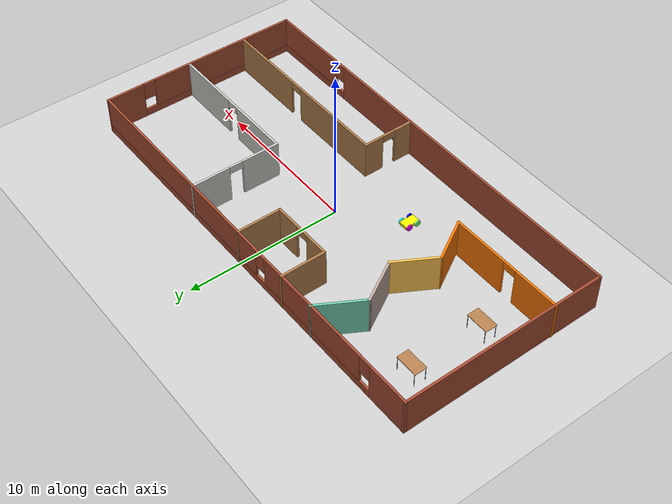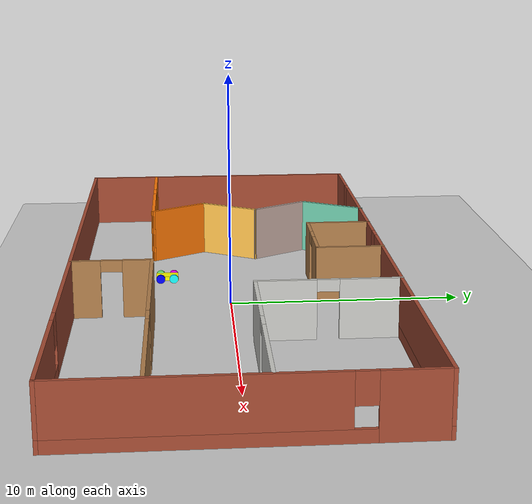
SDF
<sdf version="1.6">
 <world name="default">
  <model name="ground_plane">
   <static>1</static>
   <link name="link">
    <collision name="collision">
     <geometry><plane><normal>0 0 1</normal><size>100 100</size></plane></geometry>
     <surface>
      <contact><collide_bitmask>65535</collide_bitmask></contact>
      <friction><ode><mu>100</mu><mu2>50</mu2></ode></friction>
     </surface>
    </collision>
    <visual name="visual">
     <cast_shadows>0</cast_shadows>
     <geometry><plane><normal>0 0 1</normal><size>100 100</size></plane></geometry>
     <material>
      <script><uri>file://media/materials/scripts/gazebo.material</uri><name>Gazebo/Grey</name></script>
     </material>
    </visual>
   </link>
  </model>
  <model name="office">
   <pose>-0.0877 -0.031287 0 0 -0 0</pose>
   <link name="Wall_0">
    <collision name="Wall_0_Collision">
     <geometry><box><size>13.5 0.15 2.5</size></box></geometry>
     <pose>0 0 1.25 0 -0 0</pose>
    </collision>
    <visual name="Wall_0_Visual">
     <pose>0 0 1.25 0 -0 0</pose>
     <geometry><box><size>13.5 0.15 2.5</size></box></geometry>
     <material>
      <script><uri>file://media/materials/scripts/gazebo.material</uri><name>Gazebo/Bricks</name></script>
      <ambient>1 1 1 1</ambient>
     </material>
     <meta><layer>0</layer></meta>
    </visual>
    <pose>-14.1592 -0.021409 0 0 0 -1.5708</pose>
   </link>
   <link name="Wall_1">
    <pose>0.015849 -6.69641 0 0 -0 0</pose>
    <visual name="Wall_1_Visual_0">
     <pose>-3.18138 0 1.25 0 -0 0</pose>
     <geometry><box><size>22.1372 0.15 2.5</size></box></geometry>
     <material>
      <script><uri>file://media/materials/scripts/gazebo.material</uri><name>Gazebo/Bricks</name></script>
      <ambient>1 1 1 1</ambient>
     </material>
     <meta><layer>0</layer></meta>
    </visual>
    <collision name="Wall_1_Collision_0">
     <geometry><box><size>22.1372 0.15 2.5</size></box></geometry>
     <pose>-3.18138 0 1.25 0 -0 0</pose>
    </collision>
    <visual name="Wall_1_Visual_1">
     <pose>11.0686 0 0.25 0 -0 0</pose>
     <geometry><box><size>6.36277 0.15 0.5</size></box></geometry>
     <material>
      <script><uri>file://media/materials/scripts/gazebo.material</uri><name>Gazebo/Bricks</name></script>
      <ambient>1 1 1 1</ambient>
     </material>
     <meta><layer>0</layer></meta>
    </visual>
    <collision name="Wall_1_Collision_1">
     <geometry><box><size>6.36277 0.15 0.5</size></box></geometry>
     <pose>11.0686 0 0.25 0 -0 0</pose>
    </collision>
    <visual name="Wall_1_Visual_2">
     <pose>11.4686 0 1.5 0 -0 0</pose>
     <geometry><box><size>5.56277 0.15 2</size></box></geometry>
     <material>
      <script><uri>file://media/materials/scripts/gazebo.material</uri><name>Gazebo/Bricks</name></script>
      <ambient>1 1 1 1</ambient>
     </material>
     <meta><layer>0</layer></meta>
    </visual>
    <collision name="Wall_1_Collision_2">
     <geometry><box><size>5.56277 0.15 2</size></box></geometry>
     <pose>11.4686 0 1.5 0 -0 0</pose>
    </collision>
    <visual name="Wall_1_Visual_3">
     <pose>8.28723 0 1.9 0 -0 0</pose>
     <geometry><box><size>0.8 0.15 1.2</size></box></geometry>
     <material>
      <script><uri>file://media/materials/scripts/gazebo.material</uri><name>Gazebo/Bricks</name></script>
      <ambient>1 1 1 1</ambient>
     </material>
     <meta><layer>0</layer></meta>
    </visual>
    <collision name="Wall_1_Collision_3">
     <geometry><box><size>0.8 0.15 1.2</size></box></geometry>
     <pose>8.28723 0 1.9 0 -0 0</pose>
    </collision>
   </link>
   <link name="Wall_10">
    <collision name="Wall_10_Collision">
     <geometry><box><size>3 0.15 2.5</size></box></geometry>
     <pose>0 0 1.25 0 -0 0</pose>
    </collision>
    <visual name="Wall_10_Visual">
     <pose>0 0 1.25 0 -0 0</pose>
     <geometry><box><size>3 0.15 2.5</size></box></geometry>
     <material>
      <script><uri>file://media/materials/scripts/gazebo.material</uri><name>Gazebo/Grey</name></script>
      <ambient>0.760784 0.662745 0.627451 1</ambient>
     </material>
     <meta><layer>0</layer></meta>
    </visual>
    <pose>-7.30335 2.75019 0 0 0 -1.0472</pose>
   </link>
   <link name="Wall_11">
    <collision name="Wall_11_Collision">
     <geometry><box><size>3 0.15 2.5</size></box></geometry>
     <pose>0 0 1.25 0 -0 0</pose>
    </collision>
    <visual name="Wall_11_Visual">
     <pose>0 0 1.25 0 -0 0</pose>
     <geometry><box><size>3 0.15 2.5</size></box></geometry>
     <material>
      <script><uri>file://media/materials/scripts/gazebo.material</uri><name>Gazebo/Grey</name></script>
      <ambient>1 0.764706 0.305882 1</ambient>
     </material>
     <meta><layer>0</layer></meta>
    </visual>
    <pose>-7.30335 0.282021 0 0 0 -2.0944</pose>
   </link>
   <link name="Wall_12">
    <collision name="Wall_12_Collision">
     <geometry><box><size>3 0.15 2.5</size></box></geometry>
     <pose>0 0 1.25 0 -0 0</pose>
    </collision>
    <visual name="Wall_12_Visual">
     <pose>0 0 1.25 0 -0 0</pose>
     <geometry><box><size>3 0.15 2.5</size></box></geometry>
     <material>
      <script><uri>file://media/materials/scripts/gazebo.material</uri><name>Gazebo/Grey</name></script>
      <ambient>0.996078 0.47451 0.0196078 1</ambient>
     </material>
     <meta><layer>0</layer></meta>
    </visual>
    <pose>-7.30335 -2.18615 0 0 0 -1.0472</pose>
   </link>
   <link name="Wall_13">
    <pose>-10.3909 -3.42024 0 0 -0 3.14159</pose>
    <visual name="Wall_13_Visual_0">
     <pose>-1.98848 0 1.25 0 -0 0</pose>
     <geometry><box><size>3.77303 0.15 2.5</size></box></geometry>
     <material>
      <script><uri>file://media/materials/scripts/gazebo.material</uri><name>Gazebo/Grey</name></script>
      <ambient>0.996078 0.47451 0.0196078 1</ambient>
     </material>
     <meta><layer>0</layer></meta>
    </visual>
    <collision name="Wall_13_Collision_0">
     <geometry><box><size>3.77303 0.15 2.5</size></box></geometry>
     <pose>-1.98848 0 1.25 0 -0 0</pose>
    </collision>
    <visual name="Wall_13_Visual_1">
     <pose>2.33652 0 1.25 0 -0 0</pose>
     <geometry><box><size>3.07697 0.15 2.5</size></box></geometry>
     <material>
      <script><uri>file://media/materials/scripts/gazebo.material</uri><name>Gazebo/Grey</name></script>
      <ambient>0.996078 0.47451 0.0196078 1</ambient>
     </material>
     <meta><layer>0</layer></meta>
    </visual>
    <collision name="Wall_13_Collision_1">
     <geometry><box><size>3.07697 0.15 2.5</size></box></geometry>
     <pose>2.33652 0 1.25 0 -0 0</pose>
    </collision>
    <visual name="Wall_13_Visual_2">
     <pose>0.348034 0 2.25 0 -0 0</pose>
     <geometry><box><size>0.9 0.15 0.5</size></box></geometry>
     <material>
      <script><uri>file://media/materials/scripts/gazebo.material</uri><name>Gazebo/Grey</name></script>
      <ambient>0.996078 0.47451 0.0196078 1</ambient>
     </material>
     <meta><layer>0</layer></meta>
    </visual>
    <collision name="Wall_13_Collision_2">
     <geometry><box><size>0.9 0.15 0.5</size></box></geometry>
     <pose>0.348034 0 2.25 0 -0 0</pose>
    </collision>
   </link>
   <link name="Wall_15">
    <pose>4.73531 3.74396 0 0 0 -1.5708</pose>
    <visual name="Wall_15_Visual_0">
     <pose>-1.71476 0 1.25 0 -0 0</pose>
     <geometry><box><size>2.57049 0.15 2.5</size></box></geometry>
     <material>
      <script><uri>file://media/materials/scripts/gazebo.material</uri><name>Gazebo/CeilingTiled</name></script>
      <ambient>1 1 1 1</ambient>
     </material>
     <meta><layer>0</layer></meta>
    </visual>
    <collision name="Wall_15_Collision_0">
     <geometry><box><size>2.57049 0.15 2.5</size></box></geometry>
     <pose>-1.71476 0 1.25 0 -0 0</pose>
    </collision>
    <visual name="Wall_15_Visual_1">
     <pose>1.73524 0 1.25 0 -0 0</pose>
     <geometry><box><size>2.52951 0.15 2.5</size></box></geometry>
     <material>
      <script><uri>file://media/materials/scripts/gazebo.material</uri><name>Gazebo/CeilingTiled</name></script>
      <ambient>1 1 1 1</ambient>
     </material>
     <meta><layer>0</layer></meta>
    </visual>
    <collision name="Wall_15_Collision_1">
     <geometry><box><size>2.52951 0.15 2.5</size></box></geometry>
     <pose>1.73524 0 1.25 0 -0 0</pose>
    </collision>
    <visual name="Wall_15_Visual_2">
     <pose>0.020489 0 2.25 0 -0 0</pose>
     <geometry><box><size>0.9 0.15 0.5</size></box></geometry>
     <material>
      <script><uri>file://media/materials/scripts/gazebo.material</uri><name>Gazebo/CeilingTiled</name></script>
      <ambient>1 1 1 1</ambient>
     </material>
     <meta><layer>0</layer></meta>
    </visual>
    <collision name="Wall_15_Collision_2">
     <geometry><box><size>0.9 0.15 0.5</size></box></geometry>
     <pose>0.020489 0 2.25 0 -0 0</pose>
    </collision>
   </link>
   <link name="Wall_16">
    <pose>9.41031 0.818959 0 0 -0 0</pose>
    <visual name="Wall_16_Visual_0">
     <pose>-2.67653 0 1.25 0 -0 0</pose>
     <geometry><box><size>4.14695 0.15 2.5</size></box></geometry>
     <material>
      <script><uri>file://media/materials/scripts/gazebo.material</uri><name>Gazebo/CeilingTiled</name></script>
      <ambient>1 1 1 1</ambient>
     </material>
     <meta><layer>0</layer></meta>
    </visual>
    <collision name="Wall_16_Collision_0">
     <geometry><box><size>4.14695 0.15 2.5</size></box></geometry>
     <pose>-2.67653 0 1.25 0 -0 0</pose>
    </collision>
    <visual name="Wall_16_Visual_1">
     <pose>2.52347 0 1.25 0 -0 0</pose>
     <geometry><box><size>4.45305 0.15 2.5</size></box></geometry>
     <material>
      <script><uri>file://media/materials/scripts/gazebo.material</uri><name>Gazebo/CeilingTiled</name></script>
      <ambient>1 1 1 1</ambient>
     </material>
     <meta><layer>0</layer></meta>
    </visual>
    <collision name="Wall_16_Collision_1">
     <geometry><box><size>4.45305 0.15 2.5</size></box></geometry>
     <pose>2.52347 0 1.25 0 -0 0</pose>
    </collision>
    <visual name="Wall_16_Visual_2">
     <pose>-0.153052 0 2.25 0 -0 0</pose>
     <geometry><box><size>0.9 0.15 0.5</size></box></geometry>
     <material>
      <script><uri>file://media/materials/scripts/gazebo.material</uri><name>Gazebo/CeilingTiled</name></script>
      <ambient>1 1 1 1</ambient>
     </material>
     <meta><layer>0</layer></meta>
    </visual>
    <collision name="Wall_16_Collision_2">
     <geometry><box><size>0.9 0.15 0.5</size></box></geometry>
     <pose>-0.153052 0 2.25 0 -0 0</pose>
    </collision>
   </link>
   <link name="Wall_18">
    <pose>1.45793 -4.97297 0 0 -0 1.5708</pose>
    <visual name="Wall_18_Visual_0">
     <pose>-1.10779 0 1.25 0 -0 0</pose>
     <geometry><box><size>1.28443 0.15 2.5</size></box></geometry>
     <material>
      <script><uri>file://media/materials/scripts/gazebo.material</uri><name>Gazebo/Wood</name></script>
      <ambient>1 1 1 1</ambient>
     </material>
     <meta><layer>0</layer></meta>
    </visual>
    <collision name="Wall_18_Collision_0">
     <geometry><box><size>1.28443 0.15 2.5</size></box></geometry>
     <pose>-1.10779 0 1.25 0 -0 0</pose>
    </collision>
    <visual name="Wall_18_Visual_1">
     <pose>1.09221 0 1.25 0 -0 0</pose>
     <geometry><box><size>1.31557 0.15 2.5</size></box></geometry>
     <material>
      <script><uri>file://media/materials/scripts/gazebo.material</uri><name>Gazebo/Wood</name></script>
      <ambient>1 1 1 1</ambient>
     </material>
     <meta><layer>0</layer></meta>
    </visual>
    <collision name="Wall_18_Collision_1">
     <geometry><box><size>1.31557 0.15 2.5</size></box></geometry>
     <pose>1.09221 0 1.25 0 -0 0</pose>
    </collision>
    <visual name="Wall_18_Visual_2">
     <pose>-0.01557 0 2.25 0 -0 0</pose>
     <geometry><box><size>0.9 0.15 0.5</size></box></geometry>
     <material>
      <script><uri>file://media/materials/scripts/gazebo.material</uri><name>Gazebo/Wood</name></script>
      <ambient>1 1 1 1</ambient>
     </material>
     <meta><layer>0</layer></meta>
    </visual>
    <collision name="Wall_18_Collision_2">
     <geometry><box><size>0.9 0.15 0.5</size></box></geometry>
     <pose>-0.01557 0 2.25 0 -0 0</pose>
    </collision>
   </link>
   <link name="Wall_19">
    <pose>7.75793 -3.29797 0 0 -0 0</pose>
    <visual name="Wall_19_Visual_0">
     <pose>-3.11918 0 1.25 0 -0 0</pose>
     <geometry><box><size>6.51164 0.15 2.5</size></box></geometry>
     <material>
      <script><uri>file://media/materials/scripts/gazebo.material</uri><name>Gazebo/Wood</name></script>
      <ambient>1 1 1 1</ambient>
     </material>
     <meta><layer>0</layer></meta>
    </visual>
    <collision name="Wall_19_Collision_0">
     <geometry><box><size>6.51164 0.15 2.5</size></box></geometry>
     <pose>-3.11918 0 1.25 0 -0 0</pose>
    </collision>
    <visual name="Wall_19_Visual_1">
     <pose>3.70582 0 1.25 0 -0 0</pose>
     <geometry><box><size>5.33836 0.15 2.5</size></box></geometry>
     <material>
      <script><uri>file://media/materials/scripts/gazebo.material</uri><name>Gazebo/Wood</name></script>
      <ambient>1 1 1 1</ambient>
     </material>
     <meta><layer>0</layer></meta>
    </visual>
    <collision name="Wall_19_Collision_1">
     <geometry><box><size>5.33836 0.15 2.5</size></box></geometry>
     <pose>3.70582 0 1.25 0 -0 0</pose>
    </collision>
    <visual name="Wall_19_Visual_2">
     <pose>0.586637 0 2.25 0 -0 0</pose>
     <geometry><box><size>0.9 0.15 0.5</size></box></geometry>
     <material>
      <script><uri>file://media/materials/scripts/gazebo.material</uri><name>Gazebo/Wood</name></script>
      <ambient>1 1 1 1</ambient>
     </material>
     <meta><layer>0</layer></meta>
    </visual>
    <collision name="Wall_19_Collision_2">
     <geometry><box><size>0.9 0.15 0.5</size></box></geometry>
     <pose>0.586637 0 2.25 0 -0 0</pose>
    </collision>
   </link>
   <link name="Wall_22">
    <collision name="Wall_22_Collision">
     <geometry><box><size>3 0.15 2.5</size></box></geometry>
     <pose>0 0 1.25 0 -0 0</pose>
    </collision>
    <visual name="Wall_22_Visual">
     <pose>0 0 1.25 0 -0 0</pose>
     <geometry><box><size>3 0.15 2.5</size></box></geometry>
     <material>
      <script><uri>file://media/materials/scripts/gazebo.material</uri><name>Gazebo/Wood</name></script>
      <ambient>1 1 1 1</ambient>
     </material>
     <meta><layer>0</layer></meta>
    </visual>
    <pose>-3.89373 5.24396 0 0 0 -1.5708</pose>
   </link>
   <link name="Wall_23">
    <pose>-1.84373 3.81896 0 0 -0 0</pose>
    <visual name="Wall_23_Visual_0">
     <pose>-1.31684 0 1.25 0 -0 0</pose>
     <geometry><box><size>1.61632 0.15 2.5</size></box></geometry>
     <material>
      <script><uri>file://media/materials/scripts/gazebo.material</uri><name>Gazebo/Wood</name></script>
      <ambient>1 1 1 1</ambient>
     </material>
     <meta><layer>0</layer></meta>
    </visual>
    <collision name="Wall_23_Collision_0">
     <geometry><box><size>1.61632 0.15 2.5</size></box></geometry>
     <pose>-1.31684 0 1.25 0 -0 0</pose>
    </collision>
    <visual name="Wall_23_Visual_1">
     <pose>1.25816 0 1.25 0 -0 0</pose>
     <geometry><box><size>1.73368 0.15 2.5</size></box></geometry>
     <material>
      <script><uri>file://media/materials/scripts/gazebo.material</uri><name>Gazebo/Wood</name></script>
      <ambient>1 1 1 1</ambient>
     </material>
     <meta><layer>0</layer></meta>
    </visual>
    <collision name="Wall_23_Collision_1">
     <geometry><box><size>1.73368 0.15 2.5</size></box></geometry>
     <pose>1.25816 0 1.25 0 -0 0</pose>
    </collision>
    <visual name="Wall_23_Visual_2">
     <pose>-0.058683 0 2.25 0 -0 0</pose>
     <geometry><box><size>0.9 0.15 0.5</size></box></geometry>
     <material>
      <script><uri>file://media/materials/scripts/gazebo.material</uri><name>Gazebo/Wood</name></script>
      <ambient>1 1 1 1</ambient>
     </material>
     <meta><layer>0</layer></meta>
    </visual>
    <collision name="Wall_23_Collision_2">
     <geometry><box><size>0.9 0.15 0.5</size></box></geometry>
     <pose>-0.058683 0 2.25 0 -0 0</pose>
    </collision>
   </link>
   <link name="Wall_24">
    <collision name="Wall_24_Collision">
     <geometry><box><size>3 0.15 2.5</size></box></geometry>
     <pose>0 0 1.25 0 -0 0</pose>
    </collision>
    <visual name="Wall_24_Visual">
     <pose>0 0 1.25 0 -0 0</pose>
     <geometry><box><size>3 0.15 2.5</size></box></geometry>
     <material>
      <script><uri>file://media/materials/scripts/gazebo.material</uri><name>Gazebo/Wood</name></script>
      <ambient>1 1 1 1</ambient>
     </material>
     <meta><layer>0</layer></meta>
    </visual>
    <pose>0.206268 5.24396 0 0 -0 1.5708</pose>
   </link>
   <link name="Wall_5">
    <pose>0.015849 6.65359 0 0 -0 0</pose>
    <visual name="Wall_5_Visual_0">
     <pose>-12.8476 0 1.25 0 -0 0</pose>
     <geometry><box><size>2.80487 0.15 2.5</size></box></geometry>
     <material>
      <script><uri>file://media/materials/scripts/gazebo.material</uri><name>Gazebo/Bricks</name></script>
      <ambient>1 1 1 1</ambient>
     </material>
     <meta><layer>0</layer></meta>
    </visual>
    <collision name="Wall_5_Collision_0">
     <geometry><box><size>2.80487 0.15 2.5</size></box></geometry>
     <pose>-12.8476 0 1.25 0 -0 0</pose>
    </collision>
    <visual name="Wall_5_Visual_1">
     <pose>1.40243 0 0.25 0 -0 0</pose>
     <geometry><box><size>25.6951 0.15 0.5</size></box></geometry>
     <material>
      <script><uri>file://media/materials/scripts/gazebo.material</uri><name>Gazebo/Bricks</name></script>
      <ambient>1 1 1 1</ambient>
     </material>
     <meta><layer>0</layer></meta>
    </visual>
    <collision name="Wall_5_Collision_1">
     <geometry><box><size>25.6951 0.15 0.5</size></box></geometry>
     <pose>1.40243 0 0.25 0 -0 0</pose>
    </collision>
    <visual name="Wall_5_Visual_2">
     <pose>-6.50244 0 1.5 0 -0 0</pose>
     <geometry><box><size>8.28538 0.15 2</size></box></geometry>
     <material>
      <script><uri>file://media/materials/scripts/gazebo.material</uri><name>Gazebo/Bricks</name></script>
      <ambient>1 1 1 1</ambient>
     </material>
     <meta><layer>0</layer></meta>
    </visual>
    <collision name="Wall_5_Collision_2">
     <geometry><box><size>8.28538 0.15 2</size></box></geometry>
     <pose>-6.50244 0 1.5 0 -0 0</pose>
    </collision>
    <visual name="Wall_5_Visual_3">
     <pose>6.34513 0 1.5 0 -0 0</pose>
     <geometry><box><size>15.8097 0.15 2</size></box></geometry>
     <material>
      <script><uri>file://media/materials/scripts/gazebo.material</uri><name>Gazebo/Bricks</name></script>
      <ambient>1 1 1 1</ambient>
     </material>
     <meta><layer>0</layer></meta>
    </visual>
    <collision name="Wall_5_Collision_3">
     <geometry><box><size>15.8097 0.15 2</size></box></geometry>
     <pose>6.34513 0 1.5 0 -0 0</pose>
    </collision>
    <visual name="Wall_5_Visual_4">
     <pose>-11.0451 0 1.9 0 -0 0</pose>
     <geometry><box><size>0.8 0.15 1.2</size></box></geometry>
     <material>
      <script><uri>file://media/materials/scripts/gazebo.material</uri><name>Gazebo/Bricks</name></script>
      <ambient>1 1 1 1</ambient>
     </material>
     <meta><layer>0</layer></meta>
    </visual>
    <collision name="Wall_5_Collision_4">
     <geometry><box><size>0.8 0.15 1.2</size></box></geometry>
     <pose>-11.0451 0 1.9 0 -0 0</pose>
    </collision>
    <visual name="Wall_5_Visual_5">
     <pose>-1.95975 0 1.9 0 -0 0</pose>
     <geometry><box><size>0.8 0.15 1.2</size></box></geometry>
     <material>
      <script><uri>file://media/materials/scripts/gazebo.material</uri><name>Gazebo/Bricks</name></script>
      <ambient>1 1 1 1</ambient>
     </material>
     <meta><layer>0</layer></meta>
    </visual>
    <collision name="Wall_5_Collision_5">
     <geometry><box><size>0.8 0.15 1.2</size></box></geometry>
     <pose>-1.95975 0 1.9 0 -0 0</pose>
    </collision>
   </link>
   <link name="Wall_6">
    <pose>14.1908 -0.021409 0 0 0 -1.5708</pose>
    <visual name="Wall_6_Visual_0">
     <pose>-5.48893 0 1.25 0 -0 0</pose>
     <geometry><box><size>2.52215 0.15 2.5</size></box></geometry>
     <material>
      <script><uri>file://media/materials/scripts/gazebo.material</uri><name>Gazebo/Bricks</name></script>
      <ambient>1 1 1 1</ambient>
     </material>
     <meta><layer>0</layer></meta>
    </visual>
    <collision name="Wall_6_Collision_0">
     <geometry><box><size>2.52215 0.15 2.5</size></box></geometry>
     <pose>-5.48893 0 1.25 0 -0 0</pose>
    </collision>
    <visual name="Wall_6_Visual_1">
     <pose>1.26107 0 0.25 0 -0 0</pose>
     <geometry><box><size>10.9779 0.15 0.5</size></box></geometry>
     <material>
      <script><uri>file://media/materials/scripts/gazebo.material</uri><name>Gazebo/Bricks</name></script>
      <ambient>1 1 1 1</ambient>
     </material>
     <meta><layer>0</layer></meta>
    </visual>
    <collision name="Wall_6_Collision_1">
     <geometry><box><size>10.9779 0.15 0.5</size></box></geometry>
     <pose>1.26107 0 0.25 0 -0 0</pose>
    </collision>
    <visual name="Wall_6_Visual_2">
     <pose>1.66108 0 1.5 0 -0 0</pose>
     <geometry><box><size>10.1778 0.15 2</size></box></geometry>
     <material>
      <script><uri>file://media/materials/scripts/gazebo.material</uri><name>Gazebo/Bricks</name></script>
      <ambient>1 1 1 1</ambient>
     </material>
     <meta><layer>0</layer></meta>
    </visual>
    <collision name="Wall_6_Collision_2">
     <geometry><box><size>10.1778 0.15 2</size></box></geometry>
     <pose>1.66108 0 1.5 0 -0 0</pose>
    </collision>
    <visual name="Wall_6_Visual_3">
     <pose>-3.82785 0 1.9 0 -0 0</pose>
     <geometry><box><size>0.8 0.15 1.2</size></box></geometry>
     <material>
      <script><uri>file://media/materials/scripts/gazebo.material</uri><name>Gazebo/Bricks</name></script>
      <ambient>1 1 1 1</ambient>
     </material>
     <meta><layer>0</layer></meta>
    </visual>
    <collision name="Wall_6_Collision_3">
     <geometry><box><size>0.8 0.15 1.2</size></box></geometry>
     <pose>-3.82785 0 1.9 0 -0 0</pose>
    </collision>
   </link>
   <link name="Wall_9">
    <collision name="Wall_9_Collision">
     <geometry><box><size>3.25 0.15 2.5</size></box></geometry>
     <pose>0 0 1.25 0 -0 0</pose>
    </collision>
    <visual name="Wall_9_Visual">
     <pose>0 0 1.25 0 -0 0</pose>
     <geometry><box><size>3.25 0.15 2.5</size></box></geometry>
     <material>
      <script><uri>file://media/materials/scripts/gazebo.material</uri><name>Gazebo/Grey</name></script>
      <ambient>0.435294 0.796078 0.67451 1</ambient>
     </material>
     <meta><layer>0</layer></meta>
    </visual>
    <pose>-7.24085 5.32662 0 0 0 -2.0944</pose>
   </link>
   <static>1</static>
  </model>
  <model name="cabinet">
   <static>1</static>
   <link name="cabinet_bottom_plate">
    <inertial>
     <pose>0 0 -1 0 -0 0</pose>
     <inertia><ixx>2.05</ixx><ixy>0</ixy><ixz>0</ixz><iyy>2.05</iyy><iyz>0</iyz><izz>2.05</izz></inertia>
     <mass>25</mass>
    </inertial>
    <collision name="cabinet_bottom_plate_geom">
     <pose>0 0 0.01 0 -0 0</pose>
     <geometry><box><size>0.45 0.45 0.02</size></box></geometry>
    </collision>
    <visual name="cabinet_bottom_plate_geom_visual">
     <pose>0 0 0.01 0 -0 0</pose>
     <geometry><box><size>0.45 0.45 0.02</size></box></geometry>
     <material>
      <script><uri>file://media/materials/scripts/gazebo.material</uri><name>Gazebo/Wood</name></script>
     </material>
    </visual>
    <collision name="cabinet_bottom_plate_geom_cabinet_back_plate">
     <pose>0.235 0 0.51 0 -0 0</pose>
     <geometry><box><size>0.02 0.45 1.02</size></box></geometry>
    </collision>
    <visual name="cabinet_bottom_plate_geom_cabinet_back_plate_visual">
     <pose>0.235 0 0.51 0 -0 0</pose>
     <geometry><box><size>0.02 0.45 1.02</size></box></geometry>
     <material>
      <script><uri>file://media/materials/scripts/gazebo.material</uri><name>Gazebo/Wood</name></script>
     </material>
    </visual>
    <collision name="cabinet_bottom_plate_geom_cabinet_left_plate">
     <pose>0 0.235 0.51 0 -0 0</pose>
     <geometry><box><size>0.45 0.02 1.02</size></box></geometry>
    </collision>
    <visual name="cabinet_bottom_plate_geom_cabinet_left_plate_visual">
     <pose>0 0.235 0.51 0 -0 0</pose>
     <geometry><box><size>0.45 0.02 1.02</size></box></geometry>
     <material>
      <script><uri>file://media/materials/scripts/gazebo.material</uri><name>Gazebo/Wood</name></script>
     </material>
    </visual>
    <collision name="cabinet_bottom_plate_geom_cabinet_middle_plate">
     <pose>0 0 0.51 0 -0 0</pose>
     <geometry><box><size>0.45 0.45 0.02</size></box></geometry>
    </collision>
    <visual name="cabinet_bottom_plate_geom_cabinet_middle_plate_visual">
     <pose>0 0 0.51 0 -0 0</pose>
     <geometry><box><size>0.45 0.45 0.02</size></box></geometry>
     <material>
      <script><uri>file://media/materials/scripts/gazebo.material</uri><name>Gazebo/Wood</name></script>
     </material>
    </visual>
    <collision name="cabinet_bottom_plate_geom_cabinet_right_plate">
     <pose>0 -0.235 0.51 0 -0 0</pose>
     <geometry><box><size>0.45 0.02 1.02</size></box></geometry>
    </collision>
    <visual name="cabinet_bottom_plate_geom_cabinet_right_plate_visual">
     <pose>0 -0.235 0.51 0 -0 0</pose>
     <geometry><box><size>0.45 0.02 1.02</size></box></geometry>
     <material>
      <script><uri>file://media/materials/scripts/gazebo.material</uri><name>Gazebo/Wood</name></script>
     </material>
    </visual>
    <collision name="cabinet_bottom_plate_geom_cabinet_top_plate">
     <pose>0 0 1.01 0 -0 0</pose>
     <geometry><box><size>0.45 0.45 0.02</size></box></geometry>
    </collision>
    <visual name="cabinet_bottom_plate_geom_cabinet_top_plate_visual">
     <pose>0 0 1.01 0 -0 0</pose>
     <geometry><box><size>0.45 0.45 0.02</size></box></geometry>
     <material>
      <script><uri>file://media/materials/scripts/gazebo.material</uri><name>Gazebo/Wood</name></script>
     </material>
    </visual>
   </link>
   <pose>-0.545344 6.23489 0 0 -0 0</pose>
  </model>
  <model name="table">
   <static>1</static>
   <link name="link">
    <collision name="surface">
     <pose>0 0 1 0 -0 0</pose>
     <geometry><box><size>1.5 0.8 0.03</size></box></geometry>
     <surface><friction><ode><mu>0.6</mu><mu2>0.6</mu2></ode></friction></surface>
    </collision>
    <visual name="visual1">
     <pose>0 0 1 0 -0 0</pose>
     <geometry><box><size>1.5 0.8 0.03</size></box></geometry>
     <material>
      <script><uri>file://media/materials/scripts/gazebo.material</uri><name>Gazebo/Wood</name></script>
     </material>
    </visual>
    <collision name="front_left_leg">
     <pose>0.68 0.38 0.5 0 -0 0</pose>
     <geometry><cylinder><radius>0.02</radius><length>1</length></cylinder></geometry>
    </collision>
    <visual name="front_left_leg">
     <pose>0.68 0.38 0.5 0 -0 0</pose>
     <geometry><cylinder><radius>0.02</radius><length>1</length></cylinder></geometry>
     <material>
      <script><uri>file://media/materials/scripts/gazebo.material</uri><name>Gazebo/Grey</name></script>
     </material>
    </visual>
    <collision name="front_right_leg">
     <pose>0.68 -0.38 0.5 0 -0 0</pose>
     <geometry><cylinder><radius>0.02</radius><length>1</length></cylinder></geometry>
    </collision>
    <visual name="front_right_leg">
     <pose>0.68 -0.38 0.5 0 -0 0</pose>
     <geometry><cylinder><radius>0.02</radius><length>1</length></cylinder></geometry>
     <material>
      <script><uri>file://media/materials/scripts/gazebo.material</uri><name>Gazebo/Grey</name></script>
     </material>
    </visual>
    <collision name="back_right_leg">
     <pose>-0.68 -0.38 0.5 0 -0 0</pose>
     <geometry><cylinder><radius>0.02</radius><length>1</length></cylinder></geometry>
    </collision>
    <visual name="back_right_leg">
     <pose>-0.68 -0.38 0.5 0 -0 0</pose>
     <geometry><cylinder><radius>0.02</radius><length>1</length></cylinder></geometry>
     <material>
      <script><uri>file://media/materials/scripts/gazebo.material</uri><name>Gazebo/Grey</name></script>
     </material>
    </visual>
    <collision name="back_left_leg">
     <pose>-0.68 0.38 0.5 0 -0 0</pose>
     <geometry><cylinder><radius>0.02</radius><length>1</length></cylinder></geometry>
    </collision>
    <visual name="back_left_leg">
     <pose>-0.68 0.38 0.5 0 -0 0</pose>
     <geometry><cylinder><radius>0.02</radius><length>1</length></cylinder></geometry>
     <material>
      <script><uri>file://media/materials/scripts/gazebo.material</uri><name>Gazebo/Grey</name></script>
     </material>
    </visual>
   </link>
   <pose>-11.7268 4.05281 0 0 -0 0</pose>
  </model>
  <model name="table_0">
   <static>1</static>
   <link name="link">
    <collision name="surface">
     <pose>0 0 1 0 -0 0</pose>
     <geometry><box><size>1.5 0.8 0.03</size></box></geometry>
     <surface><friction><ode><mu>0.6</mu><mu2>0.6</mu2></ode></friction></surface>
    </collision>
    <visual name="visual1">
     <pose>0 0 1 0 -0 0</pose>
     <geometry><box><size>1.5 0.8 0.03</size></box></geometry>
     <material>
      <script><uri>file://media/materials/scripts/gazebo.material</uri><name>Gazebo/Wood</name></script>
     </material>
    </visual>
    <collision name="front_left_leg">
     <pose>0.68 0.38 0.5 0 -0 0</pose>
     <geometry><cylinder><radius>0.02</radius><length>1</length></cylinder></geometry>
    </collision>
    <visual name="front_left_leg">
     <pose>0.68 0.38 0.5 0 -0 0</pose>
     <geometry><cylinder><radius>0.02</radius><length>1</length></cylinder></geometry>
     <material>
      <script><uri>file://media/materials/scripts/gazebo.material</uri><name>Gazebo/Grey</name></script>
     </material>
    </visual>
    <collision name="front_right_leg">
     <pose>0.68 -0.38 0.5 0 -0 0</pose>
     <geometry><cylinder><radius>0.02</radius><length>1</length></cylinder></geometry>
    </collision>
    <visual name="front_right_leg">
     <pose>0.68 -0.38 0.5 0 -0 0</pose>
     <geometry><cylinder><radius>0.02</radius><length>1</length></cylinder></geometry>
     <material>
      <script><uri>file://media/materials/scripts/gazebo.material</uri><name>Gazebo/Grey</name></script>
     </material>
    </visual>
    <collision name="back_right_leg">
     <pose>-0.68 -0.38 0.5 0 -0 0</pose>
     <geometry><cylinder><radius>0.02</radius><length>1</length></cylinder></geometry>
    </collision>
    <visual name="back_right_leg">
     <pose>-0.68 -0.38 0.5 0 -0 0</pose>
     <geometry><cylinder><radius>0.02</radius><length>1</length></cylinder></geometry>
     <material>
      <script><uri>file://media/materials/scripts/gazebo.material</uri><name>Gazebo/Grey</name></script>
     </material>
    </visual>
    <collision name="back_left_leg">
     <pose>-0.68 0.38 0.5 0 -0 0</pose>
     <geometry><cylinder><radius>0.02</radius><length>1</length></cylinder></geometry>
    </collision>
    <visual name="back_left_leg">
     <pose>-0.68 0.38 0.5 0 -0 0</pose>
     <geometry><cylinder><radius>0.02</radius><length>1</length></cylinder></geometry>
     <material>
      <script><uri>file://media/materials/scripts/gazebo.material</uri><name>Gazebo/Grey</name></script>
     </material>
    </visual>
   </link>
   <pose>-11.8347 -0.684355 0 0 -0 0</pose>
  </model>
  <model name="myrobot">
   <link name="link_0">
    <inertial>
     <mass>1</mass>
     <inertia>
      <ixx>0.166667</ixx>
      <ixy>0</ixy>
      <ixz>0</ixz>
      <iyy>0.166667</iyy>
      <iyz>0</iyz>
      <izz>0.166667</izz>
     </inertia>
    </inertial>
    <visual name="visual">
     <geometry><box><size>0.6 1 0.2</size></box></geometry>
     <material>
      <lighting>1</lighting>
      <script><uri>file://media/materials/scripts/gazebo.material</uri><name>Gazebo/Grey</name></script>
      <shader type="pixel"><normal_map>__default__</normal_map></shader>
      <ambient>1 1 0 1</ambient>
      <diffuse>1 1 0 1</diffuse>
      <specular>1 1 0 1</specular>
      <emissive>1 1 0 1</emissive>
     </material>
    </visual>
    <collision name="collision">
     <geometry><box><size>0.6 1 0.2</size></box></geometry>
     <surface>
      <friction>
       <ode><mu>1</mu><mu2>1</mu2><fdir1>0 0 0</fdir1><slip1>0</slip1><slip2>0</slip2></ode>
       <torsional>
        <coefficient>1</coefficient>
        <patch_radius>0</patch_radius>
        <surface_radius>0</surface_radius>
        <use_patch_radius>1</use_patch_radius>
        <ode><slip>0</slip></ode>
       </torsional>
      </friction>
      <bounce><restitution_coefficient>0</restitution_coefficient><threshold>1e+06</threshold></bounce>
      <contact>
       <collide_without_contact>0</collide_without_contact>
       <collide_without_contact_bitmask>1</collide_without_contact_bitmask>
       <collide_bitmask>1</collide_bitmask>
       <ode>
        <soft_cfm>0</soft_cfm>
        <soft_erp>0.2</soft_erp>
        <kp>1e+13</kp>
        <kd>1</kd>
        <max_vel>0.01</max_vel>
        <min_depth>0</min_depth>
       </ode>
       <bullet>
        <split_impulse>1</split_impulse>
        <split_impulse_penetration_threshold>-0.01</split_impulse_penetration_threshold>
        <soft_cfm>0</soft_cfm>
        <soft_erp>0.2</soft_erp>
        <kp>1e+13</kp>
        <kd>1</kd>
       </bullet>
      </contact>
     </surface>
    </collision>
   </link>
   <link name="link_1">
    <pose>0.350019 0.3 0 0 -0 0</pose>
    <inertial>
     <mass>1</mass>
     <inertia><ixx>0.145833</ixx><ixy>0</ixy><ixz>0</ixz><iyy>0.145833</iyy><iyz>0</iyz><izz>0.125</izz></inertia>
    </inertial>
    <visual name="visual">
     <pose>0 0 0 0 1.5707 0</pose>
     <geometry><cylinder><radius>0.2</radius><length>0.1</length></cylinder></geometry>
     <material>
      <lighting>1</lighting>
      <script><uri>file://media/materials/scripts/gazebo.material</uri><name>Gazebo/Grey</name></script>
      <shader type="pixel"><normal_map>__default__</normal_map></shader>
      <ambient>0.1 1 1 1</ambient>
      <diffuse>1 1 1 1</diffuse>
      <specular>1 1 1 1</specular>
      <emissive>0 0 0 1</emissive>
     </material>
    </visual>
    <collision name="collision">
     <pose>0 0 0 0 1.5707 0</pose>
     <geometry><cylinder><radius>0.2</radius><length>0.1</length></cylinder></geometry>
     <surface>
      <friction>
       <ode><mu>1</mu><mu2>1</mu2><fdir1>0 0 0</fdir1><slip1>0</slip1><slip2>0</slip2></ode>
       <torsional>
        <coefficient>1</coefficient>
        <patch_radius>0</patch_radius>
        <surface_radius>0</surface_radius>
        <use_patch_radius>1</use_patch_radius>
        <ode><slip>0</slip></ode>
       </torsional>
      </friction>
      <bounce><restitution_coefficient>0</restitution_coefficient><threshold>1e+06</threshold></bounce>
      <contact>
       <collide_without_contact>0</collide_without_contact>
       <collide_without_contact_bitmask>1</collide_without_contact_bitmask>
       <collide_bitmask>1</collide_bitmask>
       <ode>
        <soft_cfm>0</soft_cfm>
        <soft_erp>0.2</soft_erp>
        <kp>1e+13</kp>
        <kd>1</kd>
        <max_vel>0.01</max_vel>
        <min_depth>0</min_depth>
       </ode>
       <bullet>
        <split_impulse>1</split_impulse>
        <split_impulse_penetration_threshold>-0.01</split_impulse_penetration_threshold>
        <soft_cfm>0</soft_cfm>
        <soft_erp>0.2</soft_erp>
        <kp>1e+13</kp>
        <kd>1</kd>
       </bullet>
      </contact>
     </surface>
    </collision>
   </link>
   <link name="link_1_clone">
    <pose>0.350019 -0.3 0 0 -0 0</pose>
    <inertial>
     <mass>1</mass>
     <inertia><ixx>0.145833</ixx><ixy>0</ixy><ixz>0</ixz><iyy>0.145833</iyy><iyz>0</iyz><izz>0.125</izz></inertia>
    </inertial>
    <visual name="visual">
     <pose>0 0 0 0 1.5707 0</pose>
     <geometry><cylinder><radius>0.2</radius><length>0.1</length></cylinder></geometry>
     <material>
      <lighting>1</lighting>
      <script><uri>file://media/materials/scripts/gazebo.material</uri><name>Gazebo/Grey</name></script>
      <shader type="pixel"><normal_map>__default__</normal_map></shader>
      <ambient>0 0 1 1</ambient>
      <diffuse>0 0 1 1</diffuse>
      <specular>0 0 1 1</specular>
      <emissive>0 0 1 1</emissive>
     </material>
    </visual>
    <collision name="collision">
     <pose>0 0 0 0 1.5707 0</pose>
     <geometry><cylinder><radius>0.2</radius><length>0.1</length></cylinder></geometry>
     <surface>
      <friction>
       <ode><mu>1</mu><mu2>1</mu2><fdir1>0 0 0</fdir1><slip1>0</slip1><slip2>0</slip2></ode>
       <torsional>
        <coefficient>1</coefficient>
        <patch_radius>0</patch_radius>
        <surface_radius>0</surface_radius>
        <use_patch_radius>1</use_patch_radius>
        <ode><slip>0</slip></ode>
       </torsional>
      </friction>
      <bounce><restitution_coefficient>0</restitution_coefficient><threshold>1e+06</threshold></bounce>
      <contact>
       <collide_without_contact>0</collide_without_contact>
       <collide_without_contact_bitmask>1</collide_without_contact_bitmask>
       <collide_bitmask>1</collide_bitmask>
       <ode>
        <soft_cfm>0</soft_cfm>
        <soft_erp>0.2</soft_erp>
        <kp>1e+13</kp>
        <kd>1</kd>
        <max_vel>0.01</max_vel>
        <min_depth>0</min_depth>
       </ode>
       <bullet>
        <split_impulse>1</split_impulse>
        <split_impulse_penetration_threshold>-0.01</split_impulse_penetration_threshold>
        <soft_cfm>0</soft_cfm>
        <soft_erp>0.2</soft_erp>
        <kp>1e+13</kp>
        <kd>1</kd>
       </bullet>
      </contact>
     </surface>
    </collision>
   </link>
   <link name="link_1_clone_0">
    <pose>-0.350019 0.3 0 0 -0 0</pose>
    <inertial>
     <mass>1</mass>
     <inertia><ixx>0.145833</ixx><ixy>0</ixy><ixz>0</ixz><iyy>0.145833</iyy><iyz>0</iyz><izz>0.125</izz></inertia>
    </inertial>
    <visual name="visual">
     <pose>0 0 0 0 1.5707 0</pose>
     <geometry><cylinder><radius>0.2</radius><length>0.1</length></cylinder></geometry>
     <material>
      <lighting>1</lighting>
      <script><uri>file://media/materials/scripts/gazebo.material</uri><name>Gazebo/Grey</name></script>
      <shader type="pixel"><normal_map>__default__</normal_map></shader>
      <ambient>1 0 1 0</ambient>
      <diffuse>1 0 1 0</diffuse>
      <specular>1 0 1 0</specular>
      <emissive>0 0 0 1</emissive>
     </material>
    </visual>
    <collision name="collision">
     <pose>0 0 0 0 1.5707 0</pose>
     <geometry><cylinder><radius>0.2</radius><length>0.1</length></cylinder></geometry>
     <surface>
      <friction>
       <ode><mu>1</mu><mu2>1</mu2><fdir1>0 0 0</fdir1><slip1>0</slip1><slip2>0</slip2></ode>
       <torsional>
        <coefficient>1</coefficient>
        <patch_radius>0</patch_radius>
        <surface_radius>0</surface_radius>
        <use_patch_radius>1</use_patch_radius>
        <ode><slip>0</slip></ode>
       </torsional>
      </friction>
      <bounce><restitution_coefficient>0</restitution_coefficient><threshold>1e+06</threshold></bounce>
      <contact>
       <collide_without_contact>0</collide_without_contact>
       <collide_without_contact_bitmask>1</collide_without_contact_bitmask>
       <collide_bitmask>1</collide_bitmask>
       <ode>
        <soft_cfm>0</soft_cfm>
        <soft_erp>0.2</soft_erp>
        <kp>1e+13</kp>
        <kd>1</kd>
        <max_vel>0.01</max_vel>
        <min_depth>0</min_depth>
       </ode>
       <bullet>
        <split_impulse>1</split_impulse>
        <split_impulse_penetration_threshold>-0.01</split_impulse_penetration_threshold>
        <soft_cfm>0</soft_cfm>
        <soft_erp>0.2</soft_erp>
        <kp>1e+13</kp>
        <kd>1</kd>
       </bullet>
      </contact>
     </surface>
    </collision>
   </link>
   <link name="link_1_clone_0_clone">
    <pose>-0.350019 -0.3 0 0 -0 0</pose>
    <inertial>
     <mass>1</mass>
     <inertia><ixx>0.145833</ixx><ixy>0</ixy><ixz>0</ixz><iyy>0.145833</iyy><iyz>0</iyz><izz>0.125</izz></inertia>
    </inertial>
    <visual name="visual">
     <pose>0 0 0 0 1.5707 0</pose>
     <geometry><cylinder><radius>0.2</radius><length>0.1</length></cylinder></geometry>
     <material>
      <lighting>1</lighting>
      <script><uri>file://media/materials/scripts/gazebo.material</uri><name>Gazebo/Grey</name></script>
      <shader type="pixel"><normal_map>__default__</normal_map></shader>
      <ambient>0.5 1 0.5 1</ambient>
      <diffuse>0.5 1 0.5 1</diffuse>
      <specular>0.5 1 0.5 1</specular>
      <emissive>0.5 1 0.5 1</emissive>
     </material>
    </visual>
    <collision name="collision">
     <pose>0 0 0 0 1.5707 0</pose>
     <geometry><cylinder><radius>0.2</radius><length>0.1</length></cylinder></geometry>
     <surface>
      <friction>
       <ode><mu>1</mu><mu2>1</mu2><fdir1>0 0 0</fdir1><slip1>0</slip1><slip2>0</slip2></ode>
       <torsional>
        <coefficient>1</coefficient>
        <patch_radius>0</patch_radius>
        <surface_radius>0</surface_radius>
        <use_patch_radius>1</use_patch_radius>
        <ode><slip>0</slip></ode>
       </torsional>
      </friction>
      <bounce><restitution_coefficient>0</restitution_coefficient><threshold>1e+06</threshold></bounce>
      <contact>
       <collide_without_contact>0</collide_without_contact>
       <collide_without_contact_bitmask>1</collide_without_contact_bitmask>
       <collide_bitmask>1</collide_bitmask>
       <ode>
        <soft_cfm>0</soft_cfm>
        <soft_erp>0.2</soft_erp>
        <kp>1e+13</kp>
        <kd>1</kd>
        <max_vel>0.01</max_vel>
        <min_depth>0</min_depth>
       </ode>
       <bullet>
        <split_impulse>1</split_impulse>
        <split_impulse_penetration_threshold>-0.01</split_impulse_penetration_threshold>
        <soft_cfm>0</soft_cfm>
        <soft_erp>0.2</soft_erp>
        <kp>1e+13</kp>
        <kd>1</kd>
       </bullet>
      </contact>
     </surface>
    </collision>
   </link>
   <joint name="link_0_JOINT_1" type="revolute">
    <parent>link_0</parent>
    <child>link_1</child>
    <axis>
     <xyz>0 0 1</xyz>
     <use_parent_model_frame>0</use_parent_model_frame>
     <limit>
      <lower>-1.79769e+308</lower>
      <upper>1.79769e+308</upper>
      <effort>-1</effort>
      <velocity>-1</velocity>
     </limit>
     <dynamics>
      <spring_reference>0</spring_reference>
      <spring_stiffness>0</spring_stiffness>
      <damping>0</damping>
      <friction>0</friction>
     </dynamics>
    </axis>
    <physics>
     <ode><limit><cfm>0</cfm><erp>0.2</erp></limit><suspension><cfm>0</cfm><erp>0.2</erp></suspension></ode>
    </physics>
   </joint>
   <joint name="link_0_JOINT_2" type="revolute">
    <parent>link_0</parent>
    <child>link_1_clone</child>
    <axis>
     <xyz>0 0 1</xyz>
     <use_parent_model_frame>0</use_parent_model_frame>
     <limit>
      <lower>-1.79769e+308</lower>
      <upper>1.79769e+308</upper>
      <effort>-1</effort>
      <velocity>-1</velocity>
     </limit>
     <dynamics>
      <spring_reference>0</spring_reference>
      <spring_stiffness>0</spring_stiffness>
      <damping>0</damping>
      <friction>0</friction>
     </dynamics>
    </axis>
    <physics>
     <ode><limit><cfm>0</cfm><erp>0.2</erp></limit><suspension><cfm>0</cfm><erp>0.2</erp></suspension></ode>
    </physics>
   </joint>
   <joint name="link_0_JOINT_3" type="revolute">
    <parent>link_0</parent>
    <child>link_1_clone_0</child>
    <axis>
     <xyz>0 0 1</xyz>
     <use_parent_model_frame>0</use_parent_model_frame>
     <limit>
      <lower>-1.79769e+308</lower>
      <upper>1.79769e+308</upper>
      <effort>-1</effort>
      <velocity>-1</velocity>
     </limit>
     <dynamics>
      <spring_reference>0</spring_reference>
      <spring_stiffness>0</spring_stiffness>
      <damping>0</damping>
      <friction>0</friction>
     </dynamics>
    </axis>
    <physics>
     <ode><limit><cfm>0</cfm><erp>0.2</erp></limit><suspension><cfm>0</cfm><erp>0.2</erp></suspension></ode>
    </physics>
   </joint>
   <joint name="link_0_JOINT_5" type="revolute">
    <parent>link_0</parent>
    <child>link_1_clone_0_clone</child>
    <axis>
     <xyz>0 0 1</xyz>
     <use_parent_model_frame>0</use_parent_model_frame>
     <limit>
      <lower>-1.79769e+308</lower>
      <upper>1.79769e+308</upper>
      <effort>-1</effort>
      <velocity>-1</velocity>
     </limit>
     <dynamics>
      <spring_reference>0</spring_reference>
      <spring_stiffness>0</spring_stiffness>
      <damping>0</damping>
      <friction>0</friction>
     </dynamics>
    </axis>
    <physics>
     <ode><limit><cfm>0</cfm><erp>0.2</erp></limit><suspension><cfm>0</cfm><erp>0.2</erp></suspension></ode>
    </physics>
   </joint>
   <static>0</static>
   <pose>-3.40068 -2.78569 0.200005 2e-06 -2e-06 0.007783</pose>
  </model>
 </world>
</sdf>
